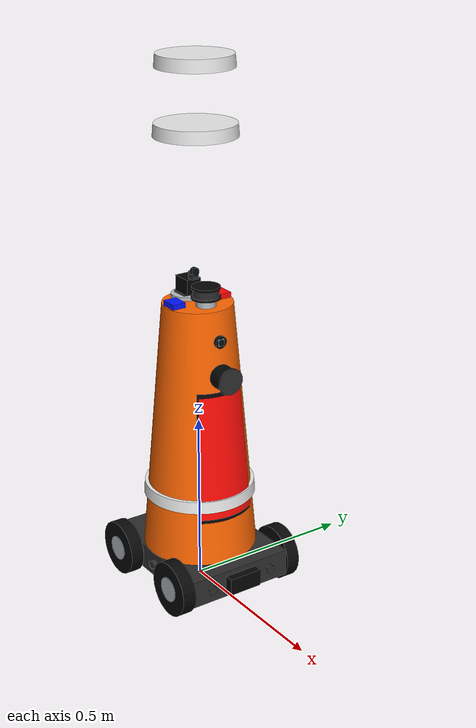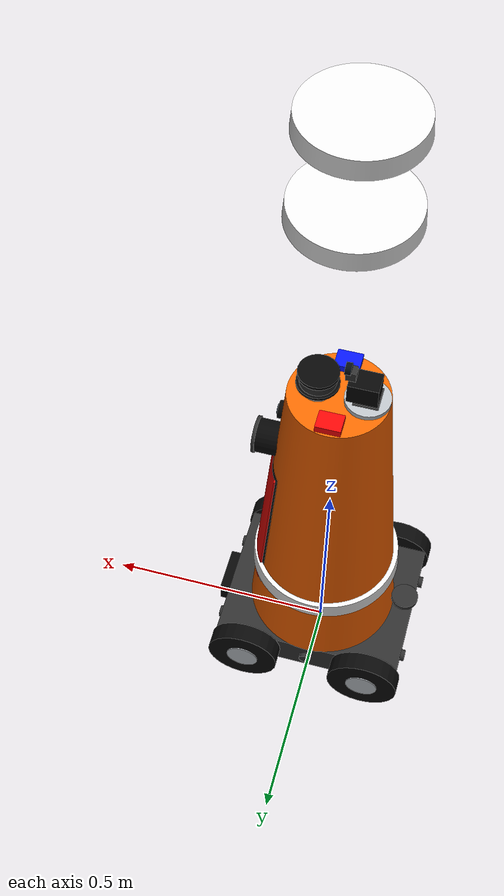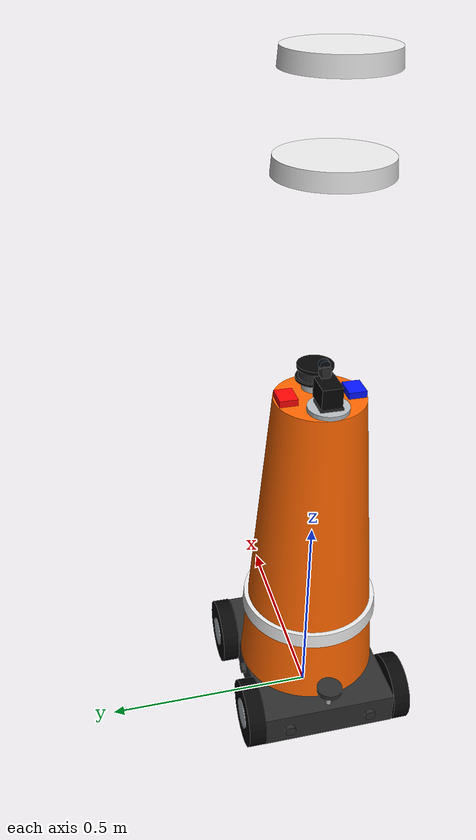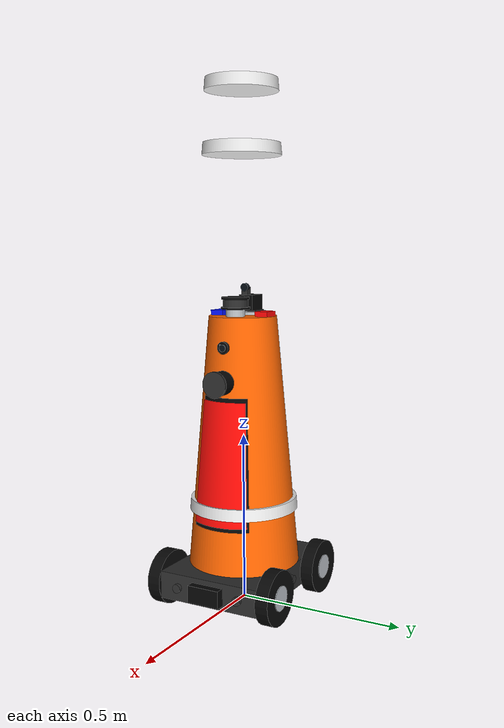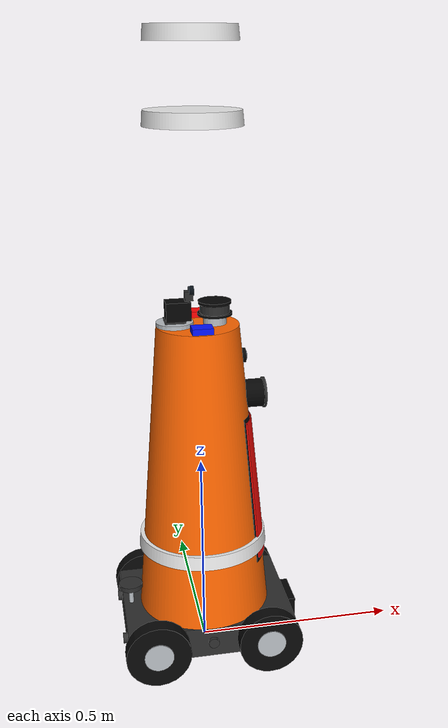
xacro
<?xml version="1.0"?>
<robot name="patrolbot" xmlns:xacro="http://www.ros.org/wiki/xacro">

  <!-- ===================== options ===================== -->
  <xacro:arg name="controllers_file"
             default="$(find patrolbot_description)/config/ros2_control.yaml"/>

  <xacro:arg name="lidar_samples" default="720"/>
  <xacro:arg name="lidar_lines" default="32"/>
  <xacro:arg name="lidar_max_range" default="100.0"/>
  <xacro:arg name="lidar_update_rate" default="10.0"/>

  <xacro:property name="lidar_line_count" value="$(arg lidar_lines)"/>
  <xacro:property name="lidar_vertical_min_angle"
                  value="${-0.2618 if int(lidar_line_count) == 16 else -0.4363}"/>
  <xacro:property name="lidar_vertical_max_angle" value="0.2618"/>

  <xacro:arg name="imu_update_rate" default="100.0"/>
  <xacro:arg name="gnss_update_rate" default="10.0"/>

  <xacro:arg name="panorama_width" default="1920"/>
  <xacro:arg name="panorama_height" default="1080"/>
  <xacro:arg name="panorama_rate" default="25.0"/>
  <xacro:arg name="panorama_hfov" default="2.4"/>

  <xacro:arg name="gimbal_camera_width" default="1920"/>
  <xacro:arg name="gimbal_camera_height" default="1080"/>
  <xacro:arg name="gimbal_camera_rate" default="25.0"/>
  <xacro:arg name="gimbal_camera_hfov" default="0.6"/>

  <!-- ===================== includes ===================== -->
  <xacro:include filename="common.xacro"/>
  <xacro:include filename="chassis.xacro"/>
  <xacro:include filename="body.xacro"/>
  <xacro:include filename="mast_gimbal.xacro"/>
  <xacro:include filename="sensors.xacro"/>
  <xacro:include filename="ros2_control.xacro"/>

  <!-- ===================== robot ===================== -->
  <xacro:patrolbot_chassis/>
  <xacro:patrolbot_body/>
  <xacro:patrolbot_mast_gimbal/>
  <xacro:patrolbot_sensors/>
  <xacro:patrolbot_ros2_control/>

</robot>

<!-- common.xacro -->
<robot xmlns:xacro="http://www.ros.org/wiki/xacro">

  <!-- ===================== dimensions (m) ===================== -->
  <!-- chassis envelope:  0.42 x 0.32 x 0.08, ground clearance 0.04 -->
  <xacro:property name="chassis_length" value="0.420"/>
  <xacro:property name="chassis_width" value="0.320"/>
  <xacro:property name="chassis_height" value="0.080"/>

  <!-- four wheels, two per side, driven as a two-wheel differential drive -->
  <xacro:property name="wheel_radius" value="0.080"/>
  <xacro:property name="wheel_width" value="0.040"/>
  <xacro:property name="wheel_separation" value="0.360"/>
  <xacro:property name="wheelbase" value="0.280"/>

  <!-- base_link sits at the wheel axle height; footprint stays on the ground -->
  <xacro:property name="base_link_z" value="${wheel_radius}"/>

  <!-- traffic-cone body -->
  <xacro:property name="body_height" value="0.740"/>
  <xacro:property name="body_bottom_radius" value="0.165"/>
  <xacro:property name="body_top_radius" value="0.100"/>
  <xacro:property name="body_bottom_z" value="${chassis_height / 2.0}"/>
  <xacro:property name="body_top_z" value="${body_bottom_z + body_height}"/>
  <xacro:property name="body_taper"
                  value="${atan((body_bottom_radius - body_top_radius) / body_height)}"/>

  <!-- curved LED warning screen on the front of the cone -->
  <xacro:property name="screen_center_z" value="0.320"/>
  <xacro:property name="screen_center_radius"
                  value="${body_bottom_radius + (body_top_radius - body_bottom_radius) * screen_center_z / body_height}"/>

  <!-- reflective band centres (heights above the body bottom) -->
  <xacro:property name="band_low_z" value="0.090"/>
  <xacro:property name="band_mid_z" value="0.610"/>
  <xacro:property name="band_high_z" value="0.700"/>

  <xacro:property name="mast_base_x" value="-0.055"/>
  <xacro:property name="mast_base_z" value="${body_top_z - 0.035}"/>
  <xacro:property name="mast_stage_travel" value="0.525"/>
  <xacro:property name="mast_stage_length" value="0.525"/>
  <xacro:property name="mast_tube_length" value="${mast_stage_length + 0.080}"/>
  <xacro:property name="mast_stage1_radius" value="0.030"/>
  <xacro:property name="mast_stage2_radius" value="0.024"/>
  <xacro:property name="mast_stage3_radius" value="0.018"/>

  <!-- ===================== masses (kg) ===================== -->
  <!-- ~29.4 kg in total, within the 35 kg system requirement -->
  <xacro:property name="mass_base" value="12.00"/>
  <xacro:property name="mass_wheel" value="1.20"/>
  <xacro:property name="mass_body" value="7.00"/>
  <xacro:property name="mass_led_screen" value="0.60"/>
  <xacro:property name="mass_led_bezel" value="0.35"/>
  <xacro:property name="mass_strobe" value="0.05"/>
  <xacro:property name="mass_speaker" value="0.50"/>
  <xacro:property name="mass_mast_base" value="0.80"/>
  <xacro:property name="mass_mast_stage1" value="0.60"/>
  <xacro:property name="mass_mast_stage2" value="0.45"/>
  <xacro:property name="mass_mast_stage3" value="0.35"/>
  <xacro:property name="mass_gimbal_yaw" value="0.15"/>
  <xacro:property name="mass_gimbal_pitch" value="0.12"/>
  <xacro:property name="mass_gimbal_roll" value="0.25"/>
  <xacro:property name="mass_gimbal_camera" value="0.15"/>
  <xacro:property name="mass_lidar" value="0.35"/>
  <xacro:property name="mass_imu" value="0.05"/>
  <xacro:property name="mass_gnss" value="0.20"/>
  <xacro:property name="mass_panorama_camera" value="0.20"/>
  <xacro:property name="mass_mmwave" value="0.30"/>
  <xacro:property name="mass_ultrasonic" value="0.02"/>

  <!-- ===================== materials ===================== -->
  <material name="traffic_orange">
    <color rgba="1.00 0.40 0.00 1.0"/>
  </material>
  <material name="reflective_white">
    <color rgba="0.92 0.92 0.92 1.0"/>
  </material>
  <material name="warning_black">
    <color rgba="0.02 0.02 0.02 1.0"/>
  </material>
  <material name="dark_grey">
    <color rgba="0.18 0.18 0.18 1.0"/>
  </material>
  <material name="aluminium">
    <color rgba="0.72 0.74 0.76 1.0"/>
  </material>
  <material name="rubber">
    <color rgba="0.03 0.03 0.03 1.0"/>
  </material>
  <material name="led_red">
    <color rgba="1.00 0.04 0.02 1.0"/>
  </material>
  <material name="strobe_red">
    <color rgba="1.00 0.02 0.02 1.0"/>
  </material>
  <material name="strobe_blue">
    <color rgba="0.02 0.08 1.00 1.0"/>
  </material>
  <material name="lens_glass">
    <color rgba="0.02 0.05 0.08 1.0"/>
  </material>

  <!-- ===================== inertia helpers ===================== -->
  <xacro:macro name="inertial_box" params="mass x y z xyz">
    <inertial>
      <origin xyz="${xyz}" rpy="0 0 0"/>
      <mass value="${mass}"/>
      <inertia ixx="${mass * (y*y + z*z) / 12.0}" ixy="0" ixz="0"
               iyy="${mass * (x*x + z*z) / 12.0}" iyz="0"
               izz="${mass * (x*x + y*y) / 12.0}"/>
    </inertial>
  </xacro:macro>

  <!-- solid cylinder aligned with the link's z axis -->
  <xacro:macro name="inertial_cylinder" params="mass radius length xyz">
    <inertial>
      <origin xyz="${xyz}" rpy="0 0 0"/>
      <mass value="${mass}"/>
      <inertia ixx="${mass * (3.0*radius*radius + length*length) / 12.0}" ixy="0" ixz="0"
               iyy="${mass * (3.0*radius*radius + length*length) / 12.0}" iyz="0"
               izz="${mass * radius * radius / 2.0}"/>
    </inertial>
  </xacro:macro>

  <xacro:macro name="inertial_sphere" params="mass radius xyz">
    <inertial>
      <origin xyz="${xyz}" rpy="0 0 0"/>
      <mass value="${mass}"/>
      <inertia ixx="${0.4 * mass * radius * radius}" ixy="0" ixz="0"
               iyy="${0.4 * mass * radius * radius}" iyz="0"
               izz="${0.4 * mass * radius * radius}"/>
    </inertial>
  </xacro:macro>

  <!-- ===================== visual helper ===================== -->
  <!-- A small camera/laser head: body cylinder plus optionally a lens. -->
  <xacro:macro name="sensor_head" params="radius length material">
    <visual>
      <origin xyz="0 0 0" rpy="0 0 0"/>
      <geometry>
        <cylinder radius="${radius}" length="${length}"/>
      </geometry>
      <material name="${material}"/>
    </visual>
  </xacro:macro>

</robot>

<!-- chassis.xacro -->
<!--
  Chassis: base_footprint -> base_link, four wheels driven as a
  two-motor differential drive (same-side wheels share one virtual motor,
  see doc/0.req/1.patrol-robot-sim.md ch3).
-->
<robot xmlns:xacro="http://www.ros.org/wiki/xacro">

  <xacro:macro name="patrolbot_chassis">

    <!-- ground-projected root frame, consumed by Nav2 / robot_localization -->
    <link name="base_footprint"/>

    <joint name="base_joint" type="fixed">
      <parent link="base_footprint"/>
      <child link="base_link"/>
      <origin xyz="0 0 ${base_link_z}" rpy="0 0 0"/>
    </joint>

    <!-- chassis box: 0.42 x 0.32 x 0.08, 0.04 m ground clearance -->
    <link name="base_link">
      <visual>
        <origin xyz="0 0 0" rpy="0 0 0"/>
        <geometry>
          <box size="${chassis_length} ${chassis_width} ${chassis_height}"/>
        </geometry>
        <material name="dark_grey"/>
      </visual>
      <collision>
        <origin xyz="0 0 0" rpy="0 0 0"/>
        <geometry>
          <box size="${chassis_length} ${chassis_width} ${chassis_height}"/>
        </geometry>
      </collision>
      <xacro:inertial_box mass="${mass_base}"
                          x="${chassis_length}"
                          y="${chassis_width}"
                          z="${chassis_height}"
                          xyz="0 0 0"/>
    </link>

    <gazebo reference="base_link">
      <mu1>0.8</mu1>
      <mu2>0.8</mu2>
    </gazebo>

    <!-- ===================== wheels ===================== -->
    <xacro:macro name="patrolbot_wheel" params="name x y">
      <link name="${name}_wheel_link">
        <!-- tyre: cylinder rotated so its axis is along y -->
        <visual>
          <origin xyz="0 0 0" rpy="${pi/2} 0 0"/>
          <geometry>
            <cylinder radius="${wheel_radius}" length="${wheel_width}"/>
          </geometry>
          <material name="rubber"/>
        </visual>
        <!-- hub -->
        <visual>
          <origin xyz="0 0 0" rpy="${pi/2} 0 0"/>
          <geometry>
            <cylinder
              radius="${wheel_radius * 0.45}"
              length="${wheel_width + 0.004}"/>
          </geometry>
          <material name="aluminium"/>
        </visual>
        <collision>
          <origin xyz="0 0 0" rpy="${pi/2} 0 0"/>
          <geometry>
            <cylinder
              radius="${wheel_radius}"
              length="${wheel_width}"/>
          </geometry>
        </collision>
        <inertial>
          <origin xyz="0 0 0" rpy="0 0 0"/>
          <mass value="${mass_wheel}"/>
          <inertia ixx="${mass_wheel * (3.0*wheel_radius*wheel_radius + wheel_width*wheel_width) / 12.0}"
                   ixy="0" ixz="0"
                   iyy="${mass_wheel * wheel_radius * wheel_radius / 2.0}"
                   iyz="0"
                   izz="${mass_wheel * (3.0*wheel_radius*wheel_radius + wheel_width*wheel_width) / 12.0}"/>
        </inertial>
      </link>

      <joint name="${name}_wheel_joint" type="continuous">
        <parent link="base_link"/>
        <child link="${name}_wheel_link"/>
        <origin xyz="${x} ${y} 0" rpy="0 0 0"/>
        <axis xyz="0 1 0"/>
        <limit effort="20.0" velocity="40.0"/>
        <dynamics damping="0.05" friction="0.0"/>
      </joint>

      <gazebo reference="${name}_wheel_link">
        <mu1>1.0</mu1>
        <mu2>1.0</mu2>
        <kp>1000000.0</kp>
        <kd>100.0</kd>
        <minDepth>0.001</minDepth>
        <maxVel>0.0</maxVel>
      </gazebo>
    </xacro:macro>

    <xacro:patrolbot_wheel name="front_left"
                           x="${wheelbase/2.0}" y="${wheel_separation/2.0}"/>
    <xacro:patrolbot_wheel name="rear_left"
                           x="${-wheelbase/2.0}" y="${wheel_separation/2.0}"/>
    <xacro:patrolbot_wheel name="front_right"
                           x="${wheelbase/2.0}" y="${-wheel_separation/2.0}"/>
    <xacro:patrolbot_wheel name="rear_right"
                           x="${-wheelbase/2.0}" y="${-wheel_separation/2.0}"/>

  </xacro:macro>

</robot>

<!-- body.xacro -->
<!--
  Traffic-cone shaped body (0.74 m tall, orange with reflective bands),
  curved LED warning screen, red/blue strobes and the directional speaker.
-->
<robot xmlns:xacro="http://www.ros.org/wiki/xacro">

  <xacro:macro name="patrolbot_body">

    <!-- ===================== cone shell ===================== -->
    <joint name="body_joint" type="fixed">
      <parent link="base_link"/>
      <child link="body_link"/>
      <origin xyz="0 0 ${body_bottom_z}" rpy="0 0 0"/>
    </joint>

    <link name="body_link">
      <visual>
        <origin xyz="0 0 0" rpy="0 0 0"/>
        <geometry>
          <mesh filename="package://patrolbot_description/meshes/body_cone.stl"/>
        </geometry>
        <material name="traffic_orange"/>
      </visual>

      <!-- three reflective bands, meshes already match the cone slope -->
      <visual>
        <origin xyz="0 0 ${band_low_z}" rpy="0 0 0"/>
        <geometry>
          <mesh filename="package://patrolbot_description/meshes/band_low.stl"/>
        </geometry>
        <material name="reflective_white"/>
      </visual>
      <visual>
        <origin xyz="0 0 ${band_mid_z}" rpy="0 0 0"/>
        <geometry>
          <mesh filename="package://patrolbot_description/meshes/band_mid.stl"/>
        </geometry>
        <material name="reflective_white"/>
      </visual>
      <visual>
        <origin xyz="0 0 ${band_high_z}" rpy="0 0 0"/>
        <geometry>
          <mesh filename="package://patrolbot_description/meshes/band_high.stl"/>
        </geometry>
        <material name="reflective_white"/>
      </visual>

      <!-- collision: three stacked cylinders approximating the cone.
           Kept inside the visual shell and clear of the wheels. -->
      <collision>
        <origin xyz="0 0 0.130" rpy="0 0 0"/>
        <geometry>
          <cylinder radius="0.155" length="0.260"/>
        </geometry>
      </collision>
      <collision>
        <origin xyz="0 0 0.380" rpy="0 0 0"/>
        <geometry>
          <cylinder radius="0.122" length="0.240"/>
        </geometry>
      </collision>
      <collision>
        <origin xyz="0 0 0.620" rpy="0 0 0"/>
        <geometry>
          <cylinder radius="0.107" length="0.240"/>
        </geometry>
      </collision>

      <inertial>
        <origin xyz="0 0 0.300" rpy="0 0 0"/>
        <mass value="${mass_body}"/>
        <inertia ixx="${mass_body * (3.0*0.12*0.12 + body_height*body_height) / 12.0}"
                 ixy="0" ixz="0"
                 iyy="${mass_body * (3.0*0.12*0.12 + body_height*body_height) / 12.0}"
                 iyz="0"
                 izz="${mass_body * 0.12 * 0.12 / 2.0}"/>
      </inertial>
    </link>

    <!-- ===================== curved LED warning screen ===================== -->
    <!-- both mesh files are centred on this frame -->
    <joint name="led_bezel_joint" type="fixed">
      <parent link="body_link"/>
      <child link="led_bezel_link"/>
      <origin xyz="${screen_center_radius} 0 ${screen_center_z}" rpy="0 0 0"/>
    </joint>

    <link name="led_bezel_link">
      <visual>
        <origin xyz="0 0 0" rpy="0 0 0"/>
        <geometry>
          <mesh filename="package://patrolbot_description/meshes/led_bezel.stl"/>
        </geometry>
        <material name="warning_black"/>
      </visual>
      <xacro:inertial_box mass="${mass_led_bezel}"
        x="0.020" y="0.160" z="0.400" xyz="0 0 0"/>
    </link>

    <joint name="led_screen_joint" type="fixed">
      <parent link="led_bezel_link"/>
      <child link="led_screen_link"/>
      <origin xyz="0 0 0" rpy="0 0 0"/>
    </joint>

    <link name="led_screen_link">
      <visual>
        <origin xyz="0 0 0" rpy="0 0 0"/>
        <geometry>
          <mesh filename="package://patrolbot_description/meshes/led_screen.stl"/>
        </geometry>
        <material name="led_red"/>
      </visual>
      <xacro:inertial_box mass="${mass_led_screen}"
        x="0.008" y="0.150" z="0.360" xyz="0 0 0"/>
    </link>

    <!-- ===================== red / blue strobes ===================== -->
    <!-- Low-profile flush lights on the cone top.  Their 0.875 m top edge
         stays below the lidar scan plane (0.882 m), otherwise they would
         cut a shadow into the lidar's rear quadrants. -->
    <xacro:macro name="patrolbot_strobe" params="name y material">
      <joint name="${name}_joint" type="fixed">
        <parent link="body_link"/>
        <child link="${name}_link"/>
        <origin xyz="0 ${y} ${body_height + 0.005}" rpy="0 0 0"/>
      </joint>
      <link name="${name}_link">
        <visual>
          <origin xyz="0 0 0" rpy="0 0 0"/>
          <geometry>
            <box size="0.050 0.040 0.020"/>
          </geometry>
          <material name="${material}"/>
        </visual>
        <xacro:inertial_box
          mass="${mass_strobe}"
          x="0.050" y="0.040" z="0.020"
          xyz="0 0 0"/>
      </link>
    </xacro:macro>

    <xacro:patrolbot_strobe name="strobe_red"  y="0.075"  material="strobe_red"/>
    <xacro:patrolbot_strobe name="strobe_blue" y="-0.075" material="strobe_blue"/>

    <!-- ===================== directional speaker ===================== -->
    <!-- horn on the front face, between the LED screen and the middle band -->
    <joint name="speaker_joint" type="fixed">
      <parent link="body_link"/>
      <child link="speaker_link"/>
      <origin xyz="0.132 0 0.555" rpy="0 0 0"/>
    </joint>

    <link name="speaker_link">
      <visual>
        <origin xyz="0 0 0" rpy="0 ${pi/2} 0"/>
        <geometry>
          <cylinder radius="0.035" length="0.050"/>
        </geometry>
        <material name="warning_black"/>
      </visual>
      <!-- horn mouth -->
      <visual>
        <origin xyz="0.028 0 0" rpy="0 ${pi/2} 0"/>
        <geometry>
          <cylinder radius="0.038" length="0.006"/>
        </geometry>
        <material name="dark_grey"/>
      </visual>
      <inertial>
        <origin xyz="0 0 0" rpy="0 ${pi/2} 0"/>
        <mass value="${mass_speaker}"/>
        <inertia ixx="${mass_speaker * 0.035 * 0.035 / 2.0}"
                 ixy="0" ixz="0"
                 iyy="${mass_speaker * (3.0*0.035*0.035 + 0.050*0.050) / 12.0}"
                 iyz="0"
                 izz="${mass_speaker * (3.0*0.035*0.035 + 0.050*0.050) / 12.0}"/>
      </inertial>
    </link>

  </xacro:macro>

</robot>

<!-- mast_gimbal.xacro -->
<robot xmlns:xacro="http://www.ros.org/wiki/xacro">

  <xacro:macro name="patrolbot_mast_gimbal">

    <!-- ===================== mast base ===================== -->
    <joint name="mast_base_joint" type="fixed">
      <parent link="body_link"/>
      <child link="mast_base_link"/>
      <origin xyz="${mast_base_x} 0 ${mast_base_z - body_bottom_z}" rpy="0 0 0"/>
    </joint>

    <link name="mast_base_link">
      <!-- collar, sunk through the cone top.  The collar top (0.870 m)
           stays below the lidar scan plane (0.882 m) so it never casts a
           shadow into the lidar when the mast is collapsed. -->
      <visual>
        <origin xyz="0 0 0.005" rpy="0 0 0"/>
        <geometry>
          <cylinder radius="0.045" length="0.080"/>
        </geometry>
        <material name="aluminium"/>
      </visual>
      <xacro:inertial_cylinder mass="${mass_mast_base}" radius="0.045" length="0.080"
                               xyz="0 0 0.005"/>
    </link>

    <!-- ===================== telescopic stages ===================== -->
    <!-- Each stage frame sits at its own top; the tube extends downwards so
         it stays inside the previous stage when collapsed. -->
    <xacro:macro name="patrolbot_mast_stage" params="index parent radius mass travel">
      <joint name="mast_lift_${index}_joint" type="prismatic">
        <parent link="${parent}"/>
        <child link="mast_stage${index}_link"/>
        <origin xyz="0 0 0" rpy="0 0 0"/>
        <axis xyz="0 0 1"/>
        <limit lower="0.0" upper="${travel}"
              effort="200.0" velocity="0.20"/>
        <dynamics damping="50.0" friction="25.0"/>
      </joint>

      <link name="mast_stage${index}_link">
        <visual>
          <origin xyz="0 0 ${-mast_tube_length/2.0}" rpy="0 0 0"/>
          <geometry>
            <cylinder radius="${radius}" length="${mast_tube_length}"/>
          </geometry>
          <material name="aluminium"/>
        </visual>
        <xacro:inertial_cylinder mass="${mass}"
              radius="${radius}"
              length="${mast_tube_length}"
              xyz="0 0 ${-mast_tube_length/2.0}"/>
      </link>
    </xacro:macro>

    <xacro:patrolbot_mast_stage index="1" parent="mast_base_link"
                                radius="${mast_stage1_radius}"
                                mass="${mass_mast_stage1}"
                                travel="${mast_stage_travel}"/>
    <xacro:patrolbot_mast_stage index="2" parent="mast_stage1_link"
                                radius="${mast_stage2_radius}"
                                mass="${mass_mast_stage2}"
                                travel="${mast_stage_travel}"/>
    <xacro:patrolbot_mast_stage index="3" parent="mast_stage2_link"
                                radius="${mast_stage3_radius}"
                                mass="${mass_mast_stage3}"
                                travel="${mast_stage_travel}"/>

    <!-- ===================== three-axis gimbal ===================== -->
    <joint name="gimbal_yaw_joint" type="revolute">
      <parent link="mast_stage3_link"/>
      <child link="gimbal_yaw_link"/>
      <origin xyz="0 0 0" rpy="0 0 0"/>
      <axis xyz="0 0 1"/>
      <limit lower="${-pi}" upper="${pi}" effort="20.0" velocity="2.0"/>
      <dynamics damping="2.0" friction="1.5"/>
    </joint>

    <link name="gimbal_yaw_link">
      <visual>
        <origin xyz="0 0 0.010" rpy="0 0 0"/>
        <geometry>
          <cylinder radius="0.028" length="0.020"/>
        </geometry>
        <material name="aluminium"/>
      </visual>
      <xacro:inertial_cylinder mass="${mass_gimbal_yaw}"
        radius="0.028" length="0.020"
        xyz="0 0 0.010"/>
    </link>

    <joint name="gimbal_pitch_joint" type="revolute">
      <parent link="gimbal_yaw_link"/>
      <child link="gimbal_pitch_link"/>
      <origin xyz="0 0 0.020" rpy="0 0 0"/>
      <axis xyz="0 1 0"/>
      <limit lower="${-1.4}" upper="${1.4}" effort="20.0" velocity="2.0"/>
      <dynamics damping="1.5" friction="1.0"/>
    </joint>

    <link name="gimbal_pitch_link">
      <visual>
        <origin xyz="0 0 0.015" rpy="0 0 0"/>
        <geometry>
          <box size="0.050 0.050 0.030"/>
        </geometry>
        <material name="dark_grey"/>
      </visual>
      <xacro:inertial_box mass="${mass_gimbal_pitch}"
          x="0.050" y="0.050" z="0.030" xyz="0 0 0.015"/>
    </link>

    <joint name="gimbal_roll_joint" type="revolute">
      <parent link="gimbal_pitch_link"/>
      <child link="gimbal_roll_link"/>
      <origin xyz="0 0 0.030" rpy="0 0 0"/>
      <axis xyz="1 0 0"/>
      <limit lower="${-0.6}" upper="${0.6}" effort="20.0" velocity="2.0"/>
      <dynamics damping="1.5" friction="0.8"/>
    </joint>

    <link name="gimbal_roll_link">
      <visual>
        <origin xyz="0.008 0 0.0225" rpy="0 0 0"/>
        <geometry>
          <box size="0.060 0.045 0.045"/>
        </geometry>
        <material name="warning_black"/>
      </visual>
      <xacro:inertial_box mass="${mass_gimbal_roll}" x="0.060" y="0.045" z="0.045"
                          xyz="0.008 0 0.0225"/>
    </link>

  </xacro:macro>

</robot>

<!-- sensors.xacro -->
<robot xmlns:xacro="http://www.ros.org/wiki/xacro">

  <xacro:macro name="patrolbot_sensors">

    <!-- ===================== 100 m multi-line lidar ===================== -->
    <joint name="lidar_joint" type="fixed">
      <parent link="body_link"/>
      <child link="lidar_link"/>
      <origin xyz="0.042 0 0.762" rpy="0 0 0"/>
    </joint>

    <link name="lidar_link">
      <!-- pedestal down to the cone top -->
      <visual>
        <origin xyz="0 0 -0.012" rpy="0 0 0"/>
        <geometry>
          <cylinder radius="0.028" length="0.024"/>
        </geometry>
        <material name="aluminium"/>
      </visual>
      <!-- base plate, just above the scan origin -->
      <visual>
        <origin xyz="0 0 0.003" rpy="0 0 0"/>
        <geometry>
          <cylinder radius="0.042" length="0.006"/>
        </geometry>
        <material name="warning_black"/>
      </visual>
      <!-- low-profile housing (placeholder; replace with the selected
           16/32-line unit's diameter, height and mass) -->
      <visual>
        <origin xyz="0 0 0.017" rpy="0 0 0"/>
        <geometry>
          <cylinder radius="0.036" length="0.022"/>
        </geometry>
        <material name="dark_grey"/>
      </visual>
      <visual>
        <origin xyz="0 0 0.0315" rpy="0 0 0"/>
        <geometry>
          <cylinder radius="0.040" length="0.007"/>
        </geometry>
        <material name="warning_black"/>
      </visual>
      <xacro:inertial_cylinder mass="${mass_lidar}" radius="0.040" length="0.059"
                               xyz="0 0 0.006"/>
    </link>

    <gazebo reference="lidar_link">
      <sensor name="lidar_sensor" type="gpu_lidar">
        <always_on>true</always_on>
        <update_rate>$(arg lidar_update_rate)</update_rate>
        <visualize>true</visualize>
        <topic>/scan</topic>
        <gz_frame_id>lidar_link</gz_frame_id>
        <lidar>
          <scan>
            <horizontal>
              <samples>$(arg lidar_samples)</samples>
              <resolution>1</resolution>
              <min_angle>${-pi}</min_angle>
              <max_angle>${pi}</max_angle>
            </horizontal>
            <vertical>
              <samples>$(arg lidar_lines)</samples>
              <resolution>1</resolution>
              <min_angle>${lidar_vertical_min_angle}</min_angle>
              <max_angle>${lidar_vertical_max_angle}</max_angle>
            </vertical>
          </scan>
          <!-- 0.20 m minimum: the closest real obstacle that matters is
               handled by the ultrasonic ring, and the floor/collision
               geometry within 20 cm of the axis is discarded. -->
          <range>
            <min>0.20</min>
            <max>$(arg lidar_max_range)</max>
            <resolution>0.01</resolution>
          </range>
          <noise>
            <type>gaussian</type>
            <mean>0.0</mean>
            <stddev>0.01</stddev>
          </noise>
        </lidar>
      </sensor>
    </gazebo>

    <!-- ===================== IMU ===================== -->
    <joint name="imu_joint" type="fixed">
      <parent link="base_link"/>
      <child link="imu_link"/>
      <origin xyz="0 0 0.030" rpy="0 0 0"/>
    </joint>

    <link name="imu_link">
      <visual>
        <origin xyz="0 0 0" rpy="0 0 0"/>
        <geometry>
          <box size="0.040 0.040 0.012"/>
        </geometry>
        <material name="dark_grey"/>
      </visual>
      <xacro:inertial_box mass="${mass_imu}" x="0.040" y="0.040" z="0.012" xyz="0 0 0"/>
    </link>

    <gazebo reference="imu_link">
      <sensor name="imu_sensor" type="imu">
        <always_on>true</always_on>
        <update_rate>$(arg imu_update_rate)</update_rate>
        <topic>/imu/data</topic>
        <gz_frame_id>imu_link</gz_frame_id>
        <imu>
          <angular_velocity>
            <x><noise type="gaussian"><mean>0.0</mean><stddev>0.0015</stddev></noise></x>
            <y><noise type="gaussian"><mean>0.0</mean><stddev>0.0015</stddev></noise></y>
            <z><noise type="gaussian"><mean>0.0</mean><stddev>0.0015</stddev></noise></z>
          </angular_velocity>
          <linear_acceleration>
            <x><noise type="gaussian"><mean>0.0</mean><stddev>0.02</stddev></noise></x>
            <y><noise type="gaussian"><mean>0.0</mean><stddev>0.02</stddev></noise></y>
            <z><noise type="gaussian"><mean>0.0</mean><stddev>0.02</stddev></noise></z>
          </linear_acceleration>
        </imu>
      </sensor>
    </gazebo>

    <!-- ===================== RTK / GNSS antenna ===================== -->
    <joint name="gnss_joint" type="fixed">
      <parent link="base_link"/>
      <child link="gnss_link"/>
      <origin xyz="-0.190 0 0.090" rpy="0 0 0"/>
    </joint>

    <link name="gnss_link">
      <!-- post down to the chassis top -->
      <visual>
        <origin xyz="0 0 -0.045" rpy="0 0 0"/>
        <geometry>
          <cylinder radius="0.006" length="0.050"/>
        </geometry>
        <material name="aluminium"/>
      </visual>
      <!-- antenna disc -->
      <visual>
        <origin xyz="0 0 0" rpy="0 0 0"/>
        <geometry>
          <cylinder radius="0.030" length="0.012"/>
        </geometry>
        <material name="dark_grey"/>
      </visual>
      <xacro:inertial_cylinder mass="${mass_gnss}" radius="0.030" length="0.012"
                               xyz="0 0 0"/>
    </link>

    <gazebo reference="gnss_link">
      <sensor name="gnss_sensor" type="navsat">
        <always_on>true</always_on>
        <update_rate>$(arg gnss_update_rate)</update_rate>
        <topic>/gps/fix</topic>
        <gz_frame_id>gnss_link</gz_frame_id>
        <navsat>
          <position_sensing>
            <horizontal>
              <noise type="gaussian">
                <mean>0.0</mean>
                <stddev>2.0e-7</stddev>
              </noise>
            </horizontal>
            <vertical>
              <noise type="gaussian">
                <mean>0.0</mean>
                <stddev>0.04</stddev>
              </noise>
            </vertical>
          </position_sensing>
        </navsat>
      </sensor>
    </gazebo>

    <!-- ===================== panorama camera ===================== -->
    <joint name="panorama_camera_joint" type="fixed">
      <parent link="body_link"/>
      <child link="panorama_camera_link"/>
      <origin xyz="0.115 0 0.655" rpy="0 0 0"/>
    </joint>

    <link name="panorama_camera_link">
      <!-- bracket back to the mast collar -->
      <visual>
        <origin xyz="-0.0225 0 0" rpy="0 0 0"/>
        <geometry>
          <box size="0.045 0.020 0.020"/>
        </geometry>
        <material name="aluminium"/>
      </visual>
      <!-- housing -->
      <visual>
        <origin xyz="-0.0125 0 0" rpy="0 ${pi/2} 0"/>
        <geometry>
          <cylinder radius="0.018" length="0.025"/>
        </geometry>
        <material name="warning_black"/>
      </visual>
      <!-- lens ring -->
      <visual>
        <origin xyz="0.001 0 0" rpy="0 ${pi/2} 0"/>
        <geometry>
          <cylinder radius="0.010" length="0.004"/>
        </geometry>
        <material name="lens_glass"/>
      </visual>
      <xacro:inertial_cylinder mass="${mass_panorama_camera}" radius="0.020" length="0.040"
                               xyz="-0.010 0 0"/>
    </link>

    <joint name="panorama_camera_optical_joint" type="fixed">
      <parent link="panorama_camera_link"/>
      <child link="panorama_camera_optical_frame"/>
      <origin xyz="0 0 0" rpy="${-pi/2} 0 ${-pi/2}"/>
    </joint>

    <link name="panorama_camera_optical_frame"/>

    <gazebo reference="panorama_camera_link">
      <sensor name="panorama_camera" type="camera">
        <always_on>true</always_on>
        <update_rate>$(arg panorama_rate)</update_rate>
        <visualize>false</visualize>
        <topic>/camera/panorama/image_raw</topic>
        <gz_frame_id>panorama_camera_optical_frame</gz_frame_id>
        <camera>
          <horizontal_fov>$(arg panorama_hfov)</horizontal_fov>
          <image>
            <width>$(arg panorama_width)</width>
            <height>$(arg panorama_height)</height>
            <format>R8G8B8</format>
          </image>
          <clip>
            <near>0.05</near>
            <far>100.0</far>
          </clip>
        </camera>
      </sensor>
    </gazebo>

    <!-- ===================== gimbal camera ===================== -->
    <joint name="gimbal_camera_joint" type="fixed">
      <parent link="gimbal_roll_link"/>
      <child link="gimbal_camera_link"/>
      <origin xyz="0.035 0 0.0675" rpy="0 0 0"/>
    </joint>

    <link name="gimbal_camera_link">
      <!-- riser connecting the camera head to the roll housing -->
      <visual>
        <origin xyz="0 0 -0.01125" rpy="0 0 0"/>
        <geometry>
          <box size="0.020 0.020 0.0225"/>
        </geometry>
        <material name="dark_grey"/>
      </visual>
      <visual>
        <origin xyz="0.006 0 0" rpy="0 ${pi/2} 0"/>
        <geometry>
          <cylinder radius="0.012" length="0.012"/>
        </geometry>
        <material name="lens_glass"/>
      </visual>
      <xacro:inertial_box mass="${mass_gimbal_camera}" x="0.030" y="0.040" z="0.040"
                          xyz="0 0 0"/>
    </link>

    <joint name="gimbal_camera_optical_joint" type="fixed">
      <parent link="gimbal_camera_link"/>
      <child link="gimbal_camera_optical_frame"/>
      <origin xyz="0 0 0" rpy="${-pi/2} 0 ${-pi/2}"/>
    </joint>

    <link name="gimbal_camera_optical_frame"/>

    <gazebo reference="gimbal_camera_link">
      <sensor name="gimbal_camera" type="camera">
        <always_on>true</always_on>
        <update_rate>$(arg gimbal_camera_rate)</update_rate>
        <visualize>false</visualize>
        <topic>/camera/gimbal/image_raw</topic>
        <gz_frame_id>gimbal_camera_optical_frame</gz_frame_id>
        <camera>
          <horizontal_fov>$(arg gimbal_camera_hfov)</horizontal_fov>
          <image>
            <width>$(arg gimbal_camera_width)</width>
            <height>$(arg gimbal_camera_height)</height>
            <format>R8G8B8</format>
          </image>
          <clip>
            <near>0.10</near>
            <far>250.0</far>
          </clip>
        </camera>
      </sensor>
    </gazebo>

    <!-- ===================== mmWave radar (frame only) ===================== -->
    <joint name="mmwave_joint" type="fixed">
      <parent link="base_link"/>
      <child link="mmwave_link"/>
      <origin xyz="0.222 0 0.0" rpy="0 0 0"/>
    </joint>

    <link name="mmwave_link">
      <visual>
        <origin xyz="0 0 0" rpy="0 0 0"/>
        <geometry>
          <box size="0.025 0.100 0.050"/>
        </geometry>
        <material name="warning_black"/>
      </visual>
      <xacro:inertial_box
        mass="${mass_mmwave}"
        x="0.025"  y="0.100" z="0.050"
        xyz="0 0 0"/>
    </link>

    <!-- ===================== ultrasonic blind-spot sensors ===================== -->
    <xacro:macro name="patrolbot_ultrasonic" params="name x y rpy">
      <joint name="${name}_joint" type="fixed">
        <parent link="base_link"/>
        <child link="${name}_ultrasonic_link"/>
        <origin xyz="${x} ${y} 0" rpy="0 0 0"/>
      </joint>
      <link name="${name}_ultrasonic_link">
        <visual>
          <origin xyz="0 0 0" rpy="${rpy}"/>
          <geometry>
            <cylinder radius="0.013" length="0.012"/>
          </geometry>
          <material name="dark_grey"/>
        </visual>
        <xacro:inertial_cylinder
          mass="${mass_ultrasonic}"
          radius="0.013"
          length="0.012"
          xyz="0 0 0"/>
      </link>
    </xacro:macro>

    <xacro:patrolbot_ultrasonic name="front_left"
      x="0.214" y="0.100"  rpy="0 ${pi/2} 0"/>
    <xacro:patrolbot_ultrasonic name="front_right"
      x="0.214" y="-0.100" rpy="0 ${pi/2} 0"/>
    <xacro:patrolbot_ultrasonic name="rear_left"
      x="-0.214" y="0.100"  rpy="0 ${pi/2} 0"/>
    <xacro:patrolbot_ultrasonic name="rear_right"
      x="-0.214"  y="-0.100"  rpy="0 ${pi/2} 0"/>
    <xacro:patrolbot_ultrasonic name="left"
      x="0.0" y="0.164"  rpy="${pi/2} 0 0"/>
    <xacro:patrolbot_ultrasonic name="right"
      x="0.0" y="-0.164" rpy="${pi/2} 0 0"/>

  </xacro:macro>

</robot>
